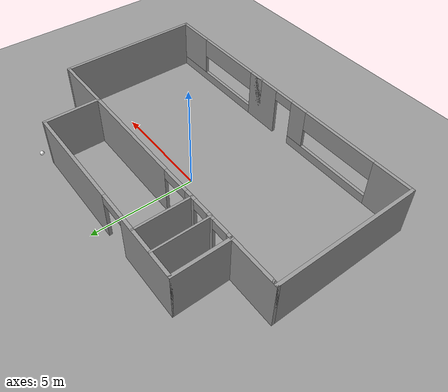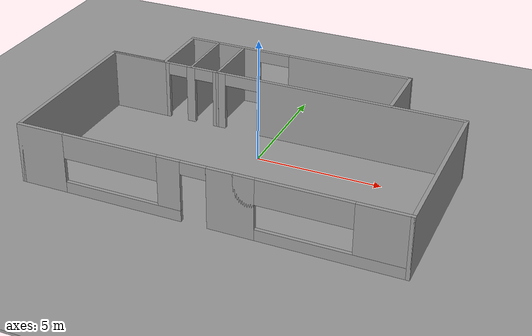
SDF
<sdf version="1.6">
 <world name="default">
  <light name="sun" type="directional">
   <pose>0 0 10 0 -0 0</pose>
   <diffuse>0.8 0.8 0.8 1</diffuse>
   <specular>0.2 0.2 0.2 1</specular>
   <attenuation>
    <range>1000</range>
    <constant>0.9</constant>
    <linear>0.01</linear>
    <quadratic>0.001</quadratic>
   </attenuation>
   <direction>-0.5 0.1 -0.9</direction>
  </light>
  <model name="ground_plane">
   <static>1</static>
   <link name="link">
    <collision name="collision">
     <geometry><plane><normal>0 0 1</normal><size>100 100</size></plane></geometry>
     <surface><friction><ode><mu>100</mu><mu2>50</mu2></ode></friction></surface>
    </collision>
    <visual name="visual">
     <cast_shadows>0</cast_shadows>
     <geometry><plane><normal>0 0 1</normal><size>100 100</size></plane></geometry>
     <material>
      <script><uri>file://media/materials/scripts/gazebo.material</uri><name>Gazebo/Grey</name></script>
     </material>
    </visual>
   </link>
  </model>
  <gravity>0 0 -9.8</gravity>
  <magnetic_field>6e-06 2.3e-05 -4.2e-05</magnetic_field>
  <atmosphere type="adiabatic"/>
  <physics name="default_physics" default="0" type="ode">
   <max_step_size>0.001</max_step_size>
   <real_time_factor>1</real_time_factor>
   <real_time_update_rate>1000</real_time_update_rate>
  </physics>
  <scene><ambient>0.4 0.4 0.4 1</ambient><background>0.7 0.7 0.7 1</background><shadows>1</shadows></scene>
  <spherical_coordinates>
   <surface_model>EARTH_WGS84</surface_model>
   <latitude_deg>0</latitude_deg>
   <longitude_deg>0</longitude_deg>
   <elevation>0</elevation>
   <heading_deg>0</heading_deg>
  </spherical_coordinates>
  <model name="project_udacity">
   <pose>0.14014 -0.40217 0 0 -0 0</pose>
   <link name="Wall_0">
    <collision name="Wall_0_Collision">
     <geometry><box><size>2.75 0.15 2.5</size></box></geometry>
     <pose>0 0 1.25 0 -0 0</pose>
    </collision>
    <visual name="Wall_0_Visual">
     <pose>0 0 1.25 0 -0 0</pose>
     <geometry><box><size>2.75 0.15 2.5</size></box></geometry>
     <material>
      <script><uri>file://media/materials/scripts/gazebo.material</uri><name>Gazebo/Grey</name></script>
      <ambient>1 1 1 1</ambient>
     </material>
     <meta><layer>0</layer></meta>
    </visual>
    <pose>4.525 3.425 0 0 -0 1.5708</pose>
   </link>
   <link name="Wall_1">
    <pose>-0.275 4.725 0 0 -0 3.14159</pose>
    <visual name="Wall_1_Visual_0">
     <pose>-2.26119 0 1.25 0 -0 0</pose>
     <geometry><box><size>5.22763 0.15 2.5</size></box></geometry>
     <material>
      <script><uri>file://media/materials/scripts/gazebo.material</uri><name>Gazebo/Grey</name></script>
      <ambient>1 1 1 1</ambient>
     </material>
     <meta><layer>0</layer></meta>
    </visual>
    <collision name="Wall_1_Collision_0">
     <geometry><box><size>5.22763 0.15 2.5</size></box></geometry>
     <pose>-2.26119 0 1.25 0 -0 0</pose>
    </collision>
    <visual name="Wall_1_Visual_1">
     <pose>3.26381 0 1.25 0 -0 0</pose>
     <geometry><box><size>3.22237 0.15 2.5</size></box></geometry>
     <material>
      <script><uri>file://media/materials/scripts/gazebo.material</uri><name>Gazebo/Grey</name></script>
      <ambient>1 1 1 1</ambient>
     </material>
     <meta><layer>0</layer></meta>
    </visual>
    <collision name="Wall_1_Collision_1">
     <geometry><box><size>3.22237 0.15 2.5</size></box></geometry>
     <pose>3.26381 0 1.25 0 -0 0</pose>
    </collision>
    <visual name="Wall_1_Visual_2">
     <pose>1.00263 0 2.25 0 -0 0</pose>
     <geometry><box><size>1.3 0.15 0.5</size></box></geometry>
     <material>
      <script><uri>file://media/materials/scripts/gazebo.material</uri><name>Gazebo/Grey</name></script>
      <ambient>1 1 1 1</ambient>
     </material>
     <meta><layer>0</layer></meta>
    </visual>
    <collision name="Wall_1_Collision_2">
     <geometry><box><size>1.3 0.15 0.5</size></box></geometry>
     <pose>1.00263 0 2.25 0 -0 0</pose>
    </collision>
   </link>
   <link name="Wall_12">
    <collision name="Wall_12_Collision">
     <geometry><box><size>2.6995 0.1 2.5</size></box></geometry>
     <pose>0 0 1.25 0 -0 0</pose>
    </collision>
    <visual name="Wall_12_Visual">
     <pose>0 0 1.25 0 -0 0</pose>
     <geometry><box><size>2.6995 0.1 2.5</size></box></geometry>
     <material>
      <script><uri>file://media/materials/scripts/gazebo.material</uri><name>Gazebo/Grey</name></script>
      <ambient>1 1 1 1</ambient>
     </material>
     <meta><layer>0</layer></meta>
    </visual>
    <pose>-2.68314 3.39817 0 0 0 -1.5708</pose>
   </link>
   <link name="Wall_14">
    <collision name="Wall_14_Collision">
     <geometry><box><size>2.68952 0.09 2.5</size></box></geometry>
     <pose>0 0 1.25 0 -0 0</pose>
    </collision>
    <visual name="Wall_14_Visual">
     <pose>0 0 1.25 0 -0 0</pose>
     <geometry><box><size>2.68952 0.09 2.5</size></box></geometry>
     <material>
      <script><uri>file://media/materials/scripts/gazebo.material</uri><name>Gazebo/Grey</name></script>
      <ambient>1 1 1 1</ambient>
     </material>
     <meta><layer>0</layer></meta>
    </visual>
    <pose>-3.86014 3.43317 0 0 0 -1.5708</pose>
   </link>
   <link name="Wall_2">
    <collision name="Wall_2_Collision">
     <geometry><box><size>2.75 0.15 2.5</size></box></geometry>
     <pose>0 0 1.25 0 -0 0</pose>
    </collision>
    <visual name="Wall_2_Visual">
     <pose>0 0 1.25 0 -0 0</pose>
     <geometry><box><size>2.75 0.15 2.5</size></box></geometry>
     <material>
      <script><uri>file://media/materials/scripts/gazebo.material</uri><name>Gazebo/Grey</name></script>
      <ambient>1 1 1 1</ambient>
     </material>
     <meta><layer>0</layer></meta>
    </visual>
    <pose>-5.075 3.425 0 0 0 -1.5708</pose>
   </link>
   <link name="Wall_3">
    <collision name="Wall_3_Collision">
     <geometry><box><size>2.5 0.15 2.5</size></box></geometry>
     <pose>0 0 1.25 0 -0 0</pose>
    </collision>
    <visual name="Wall_3_Visual">
     <pose>0 0 1.25 0 -0 0</pose>
     <geometry><box><size>2.5 0.15 2.5</size></box></geometry>
     <material>
      <script><uri>file://media/materials/scripts/gazebo.material</uri><name>Gazebo/Grey</name></script>
      <ambient>1 1 1 1</ambient>
     </material>
     <meta><layer>0</layer></meta>
    </visual>
    <pose>-6.25 2.125 0 0 -0 3.14159</pose>
   </link>
   <link name="Wall_4">
    <collision name="Wall_4_Collision">
     <geometry><box><size>7 0.15 2.5</size></box></geometry>
     <pose>0 0 1.25 0 -0 0</pose>
    </collision>
    <visual name="Wall_4_Visual">
     <pose>0 0 1.25 0 -0 0</pose>
     <geometry><box><size>7 0.15 2.5</size></box></geometry>
     <material>
      <script><uri>file://media/materials/scripts/gazebo.material</uri><name>Gazebo/Grey</name></script>
      <ambient>1 1 1 1</ambient>
     </material>
     <meta><layer>0</layer></meta>
    </visual>
    <pose>-7.425 -1.3 0 0 0 -1.5708</pose>
   </link>
   <link name="Wall_5">
    <pose>0 -4.725 0 0 -0 0</pose>
    <visual name="Wall_5_Visual_0">
     <pose>-6.52757 0 1.25 0 -0 0</pose>
     <geometry><box><size>1.94487 0.15 2.5</size></box></geometry>
     <material>
      <script><uri>file://media/materials/scripts/gazebo.material</uri><name>Gazebo/Grey</name></script>
      <ambient>1 1 1 1</ambient>
     </material>
     <meta><layer>0</layer></meta>
    </visual>
    <collision name="Wall_5_Collision_0">
     <geometry><box><size>1.94487 0.15 2.5</size></box></geometry>
     <pose>-6.52757 0 1.25 0 -0 0</pose>
    </collision>
    <visual name="Wall_5_Visual_1">
     <pose>1.06756 0 1.25 0 -0 0</pose>
     <geometry><box><size>1.79998 0.15 2.5</size></box></geometry>
     <material>
      <script><uri>file://media/materials/scripts/gazebo.material</uri><name>Gazebo/Grey</name></script>
      <ambient>1 1 1 1</ambient>
     </material>
     <meta><layer>0</layer></meta>
    </visual>
    <collision name="Wall_5_Collision_1">
     <geometry><box><size>1.79998 0.15 2.5</size></box></geometry>
     <pose>1.06756 0 1.25 0 -0 0</pose>
    </collision>
    <visual name="Wall_5_Visual_2">
     <pose>1.56331 0 1.25 0 -0 0</pose>
     <geometry><box><size>0.80847 0.15 2.5</size></box></geometry>
     <material>
      <script><uri>file://media/materials/scripts/gazebo.material</uri><name>Gazebo/Grey</name></script>
      <ambient>1 1 1 1</ambient>
     </material>
     <meta><layer>0</layer></meta>
    </visual>
    <collision name="Wall_5_Collision_2">
     <geometry><box><size>0.80847 0.15 2.5</size></box></geometry>
     <pose>1.56331 0 1.25 0 -0 0</pose>
    </collision>
    <visual name="Wall_5_Visual_3">
     <pose>-3.19378 0 0.25 0 -0 0</pose>
     <geometry><box><size>4.7227 0.15 0.5</size></box></geometry>
     <material>
      <script><uri>file://media/materials/scripts/gazebo.material</uri><name>Gazebo/Grey</name></script>
      <ambient>1 1 1 1</ambient>
     </material>
     <meta><layer>0</layer></meta>
    </visual>
    <collision name="Wall_5_Collision_3">
     <geometry><box><size>4.7227 0.15 0.5</size></box></geometry>
     <pose>-3.19378 0 0.25 0 -0 0</pose>
    </collision>
    <visual name="Wall_5_Visual_4">
     <pose>4.73377 0 0.25 0 -0 0</pose>
     <geometry><box><size>5.53245 0.15 0.5</size></box></geometry>
     <material>
      <script><uri>file://media/materials/scripts/gazebo.material</uri><name>Gazebo/Grey</name></script>
      <ambient>1 1 1 1</ambient>
     </material>
     <meta><layer>0</layer></meta>
    </visual>
    <collision name="Wall_5_Collision_4">
     <geometry><box><size>5.53245 0.15 0.5</size></box></geometry>
     <pose>4.73377 0 0.25 0 -0 0</pose>
    </collision>
    <visual name="Wall_5_Visual_5">
     <pose>4.73377 0 0.25 0 -0 0</pose>
     <geometry><box><size>5.53245 0.15 0.5</size></box></geometry>
     <material>
      <script><uri>file://media/materials/scripts/gazebo.material</uri><name>Gazebo/Grey</name></script>
      <ambient>1 1 1 1</ambient>
     </material>
     <meta><layer>0</layer></meta>
    </visual>
    <collision name="Wall_5_Collision_5">
     <geometry><box><size>5.53245 0.15 0.5</size></box></geometry>
     <pose>4.73377 0 0.25 0 -0 0</pose>
    </collision>
    <visual name="Wall_5_Visual_6">
     <pose>-1.28528 0 1.5 0 -0 0</pose>
     <geometry><box><size>0.905699 0.15 2</size></box></geometry>
     <material>
      <script><uri>file://media/materials/scripts/gazebo.material</uri><name>Gazebo/Grey</name></script>
      <ambient>1 1 1 1</ambient>
     </material>
     <meta><layer>0</layer></meta>
    </visual>
    <collision name="Wall_5_Collision_6">
     <geometry><box><size>0.905699 0.15 2</size></box></geometry>
     <pose>-1.28528 0 1.5 0 -0 0</pose>
    </collision>
    <visual name="Wall_5_Visual_7">
     <pose>-1.28528 0 1.5 0 -0 0</pose>
     <geometry><box><size>0.905699 0.15 2</size></box></geometry>
     <material>
      <script><uri>file://media/materials/scripts/gazebo.material</uri><name>Gazebo/Grey</name></script>
      <ambient>1 1 1 1</ambient>
     </material>
     <meta><layer>0</layer></meta>
    </visual>
    <collision name="Wall_5_Collision_7">
     <geometry><box><size>0.905699 0.15 2</size></box></geometry>
     <pose>-1.28528 0 1.5 0 -0 0</pose>
    </collision>
    <visual name="Wall_5_Visual_8">
     <pose>6.50127 0 1.5 0 -0 0</pose>
     <geometry><box><size>1.99745 0.15 2</size></box></geometry>
     <material>
      <script><uri>file://media/materials/scripts/gazebo.material</uri><name>Gazebo/Grey</name></script>
      <ambient>1 1 1 1</ambient>
     </material>
     <meta><layer>0</layer></meta>
    </visual>
    <collision name="Wall_5_Collision_8">
     <geometry><box><size>1.99745 0.15 2</size></box></geometry>
     <pose>6.50127 0 1.5 0 -0 0</pose>
    </collision>
    <visual name="Wall_5_Visual_9">
     <pose>6.50127 0 1.5 0 -0 0</pose>
     <geometry><box><size>1.99745 0.15 2</size></box></geometry>
     <material>
      <script><uri>file://media/materials/scripts/gazebo.material</uri><name>Gazebo/Grey</name></script>
      <ambient>1 1 1 1</ambient>
     </material>
     <meta><layer>0</layer></meta>
    </visual>
    <collision name="Wall_5_Collision_9">
     <geometry><box><size>1.99745 0.15 2</size></box></geometry>
     <pose>6.50127 0 1.5 0 -0 0</pose>
    </collision>
    <visual name="Wall_5_Visual_10">
     <pose>-3.64663 0 2 0 -0 0</pose>
     <geometry><box><size>3.817 0.15 1</size></box></geometry>
     <material>
      <script><uri>file://media/materials/scripts/gazebo.material</uri><name>Gazebo/Grey</name></script>
      <ambient>1 1 1 1</ambient>
     </material>
     <meta><layer>0</layer></meta>
    </visual>
    <collision name="Wall_5_Collision_10">
     <geometry><box><size>3.817 0.15 1</size></box></geometry>
     <pose>-3.64663 0 2 0 -0 0</pose>
    </collision>
    <visual name="Wall_5_Visual_11">
     <pose>3.73505 0 2 0 -0 0</pose>
     <geometry><box><size>3.535 0.15 1</size></box></geometry>
     <material>
      <script><uri>file://media/materials/scripts/gazebo.material</uri><name>Gazebo/Grey</name></script>
      <ambient>1 1 1 1</ambient>
     </material>
     <meta><layer>0</layer></meta>
    </visual>
    <collision name="Wall_5_Collision_11">
     <geometry><box><size>3.535 0.15 1</size></box></geometry>
     <pose>3.73505 0 2 0 -0 0</pose>
    </collision>
    <visual name="Wall_5_Visual_12">
     <pose>3.73505 0 2 0 -0 0</pose>
     <geometry><box><size>3.535 0.15 1</size></box></geometry>
     <material>
      <script><uri>file://media/materials/scripts/gazebo.material</uri><name>Gazebo/Grey</name></script>
      <ambient>1 1 1 1</ambient>
     </material>
     <meta><layer>0</layer></meta>
    </visual>
    <collision name="Wall_5_Collision_12">
     <geometry><box><size>3.535 0.15 1</size></box></geometry>
     <pose>3.73505 0 2 0 -0 0</pose>
    </collision>
    <visual name="Wall_5_Visual_13">
     <pose>-0.332899 0 2.25 0 -0 0</pose>
     <geometry><box><size>0.999073 0.15 0.5</size></box></geometry>
     <material>
      <script><uri>file://media/materials/scripts/gazebo.material</uri><name>Gazebo/Grey</name></script>
      <ambient>1 1 1 1</ambient>
     </material>
     <meta><layer>0</layer></meta>
    </visual>
    <collision name="Wall_5_Collision_13">
     <geometry><box><size>0.999073 0.15 0.5</size></box></geometry>
     <pose>-0.332899 0 2.25 0 -0 0</pose>
    </collision>
    <visual name="Wall_5_Visual_14">
     <pose>-0.332899 0 2.25 0 -0 0</pose>
     <geometry><box><size>0.999073 0.15 0.5</size></box></geometry>
     <material>
      <script><uri>file://media/materials/scripts/gazebo.material</uri><name>Gazebo/Grey</name></script>
      <ambient>1 1 1 1</ambient>
     </material>
     <meta><layer>0</layer></meta>
    </visual>
    <collision name="Wall_5_Collision_14">
     <geometry><box><size>0.999073 0.15 0.5</size></box></geometry>
     <pose>-0.332899 0 2.25 0 -0 0</pose>
    </collision>
   </link>
   <link name="Wall_6">
    <collision name="Wall_6_Collision">
     <geometry><box><size>7 0.15 2.5</size></box></geometry>
     <pose>0 0 1.25 0 -0 0</pose>
    </collision>
    <visual name="Wall_6_Visual">
     <pose>0 0 1.25 0 -0 0</pose>
     <geometry><box><size>7 0.15 2.5</size></box></geometry>
     <material>
      <script><uri>file://media/materials/scripts/gazebo.material</uri><name>Gazebo/Grey</name></script>
      <ambient>1 1 1 1</ambient>
     </material>
     <meta><layer>0</layer></meta>
    </visual>
    <pose>7.425 -1.3 0 0 -0 1.5708</pose>
   </link>
   <link name="Wall_7">
    <pose>0 2.125 0 0 -0 3.14159</pose>
    <visual name="Wall_7_Visual_0">
     <pose>-3.28914 0 1.25 0 -0 0</pose>
     <geometry><box><size>8.42171 0.15 2.5</size></box></geometry>
     <material>
      <script><uri>file://media/materials/scripts/gazebo.material</uri><name>Gazebo/Grey</name></script>
      <ambient>1 1 1 1</ambient>
     </material>
     <meta><layer>0</layer></meta>
    </visual>
    <collision name="Wall_7_Collision_0">
     <geometry><box><size>8.42171 0.15 2.5</size></box></geometry>
     <pose>-3.28914 0 1.25 0 -0 0</pose>
    </collision>
    <visual name="Wall_7_Visual_1">
     <pose>2.59958 0 1.25 0 -0 0</pose>
     <geometry><box><size>0.555726 0.15 2.5</size></box></geometry>
     <material>
      <script><uri>file://media/materials/scripts/gazebo.material</uri><name>Gazebo/Grey</name></script>
      <ambient>1 1 1 1</ambient>
     </material>
     <meta><layer>0</layer></meta>
    </visual>
    <collision name="Wall_7_Collision_1">
     <geometry><box><size>0.555726 0.15 2.5</size></box></geometry>
     <pose>2.59958 0 1.25 0 -0 0</pose>
    </collision>
    <visual name="Wall_7_Visual_2">
     <pose>3.86044 0 1.25 0 -0 0</pose>
     <geometry><box><size>0.366004 0.15 2.5</size></box></geometry>
     <material>
      <script><uri>file://media/materials/scripts/gazebo.material</uri><name>Gazebo/Grey</name></script>
      <ambient>1 1 1 1</ambient>
     </material>
     <meta><layer>0</layer></meta>
    </visual>
    <collision name="Wall_7_Collision_2">
     <geometry><box><size>0.366004 0.15 2.5</size></box></geometry>
     <pose>3.86044 0 1.25 0 -0 0</pose>
    </collision>
    <visual name="Wall_7_Visual_3">
     <pose>6.17172 0 1.25 0 -0 0</pose>
     <geometry><box><size>2.65656 0.15 2.5</size></box></geometry>
     <material>
      <script><uri>file://media/materials/scripts/gazebo.material</uri><name>Gazebo/Grey</name></script>
      <ambient>1 1 1 1</ambient>
     </material>
     <meta><layer>0</layer></meta>
    </visual>
    <collision name="Wall_7_Collision_3">
     <geometry><box><size>2.65656 0.15 2.5</size></box></geometry>
     <pose>6.17172 0 1.25 0 -0 0</pose>
    </collision>
    <visual name="Wall_7_Visual_4">
     <pose>1.62171 0 2.25 0 -0 0</pose>
     <geometry><box><size>1.4 0.15 0.5</size></box></geometry>
     <material>
      <script><uri>file://media/materials/scripts/gazebo.material</uri><name>Gazebo/Grey</name></script>
      <ambient>1 1 1 1</ambient>
     </material>
     <meta><layer>0</layer></meta>
    </visual>
    <collision name="Wall_7_Collision_4">
     <geometry><box><size>1.4 0.15 0.5</size></box></geometry>
     <pose>1.62171 0 2.25 0 -0 0</pose>
    </collision>
    <visual name="Wall_7_Visual_5">
     <pose>3.27744 0 2.25 0 -0 0</pose>
     <geometry><box><size>0.8 0.15 0.5</size></box></geometry>
     <material>
      <script><uri>file://media/materials/scripts/gazebo.material</uri><name>Gazebo/Grey</name></script>
      <ambient>1 1 1 1</ambient>
     </material>
     <meta><layer>0</layer></meta>
    </visual>
    <collision name="Wall_7_Collision_5">
     <geometry><box><size>0.8 0.15 0.5</size></box></geometry>
     <pose>3.27744 0 2.25 0 -0 0</pose>
    </collision>
    <visual name="Wall_7_Visual_6">
     <pose>4.44344 0 2.25 0 -0 0</pose>
     <geometry><box><size>0.8 0.15 0.5</size></box></geometry>
     <material>
      <script><uri>file://media/materials/scripts/gazebo.material</uri><name>Gazebo/Grey</name></script>
      <ambient>1 1 1 1</ambient>
     </material>
     <meta><layer>0</layer></meta>
    </visual>
    <collision name="Wall_7_Collision_6">
     <geometry><box><size>0.8 0.15 0.5</size></box></geometry>
     <pose>4.44344 0 2.25 0 -0 0</pose>
    </collision>
   </link>
   <static>1</static>
  </model>
  <model name="ground_plane_0">
   <static>1</static>
   <link name="link">
    <collision name="collision">
     <geometry><plane><normal>0 0 1</normal><size>100 100</size></plane></geometry>
     <surface>
      <contact><collide_bitmask>65535</collide_bitmask></contact>
      <friction><ode><mu>100</mu><mu2>50</mu2></ode></friction>
     </surface>
    </collision>
    <visual name="visual">
     <cast_shadows>0</cast_shadows>
     <geometry><plane><normal>0 0 1</normal><size>100 100</size></plane></geometry>
     <material>
      <script><uri>file://media/materials/scripts/gazebo.material</uri><name>Gazebo/Grey</name></script>
     </material>
    </visual>
   </link>
   <pose>3.35384 -1.59045 0 0 -0 0</pose>
  </model>
  <model name="my_ball">
   <link name="link_0">
    <inertial>
     <mass>1</mass>
     <inertia><ixx>0.1</ixx><ixy>0</ixy><ixz>0</ixz><iyy>0.1</iyy><iyz>0</iyz><izz>0.1</izz></inertia>
    </inertial>
    <visual name="visual">
     <geometry><sphere><radius>0.1</radius></sphere></geometry>
     <material>
      <lighting>1</lighting>
      <script><uri>file://media/materials/scripts/gazebo.material</uri><name>Gazebo/White</name></script>
      <shader type="pixel"><normal_map>__default__</normal_map></shader>
      <ambient>1 1 1 1</ambient>
      <diffuse>1 1 1 1</diffuse>
      <specular>1 1 1 1</specular>
      <emissive>1 1 1 1</emissive>
     </material>
    </visual>
    <collision name="collision">
     <geometry><sphere><radius>0.1</radius></sphere></geometry>
     <surface>
      <friction>
       <ode><mu>1</mu><mu2>1</mu2><fdir1>0 0 0</fdir1><slip1>0</slip1><slip2>0</slip2></ode>
       <torsional>
        <coefficient>1</coefficient>
        <patch_radius>0</patch_radius>
        <surface_radius>0</surface_radius>
        <use_patch_radius>1</use_patch_radius>
        <ode><slip>0</slip></ode>
       </torsional>
      </friction>
      <bounce><restitution_coefficient>0</restitution_coefficient><threshold>1e+06</threshold></bounce>
      <contact>
       <collide_without_contact>0</collide_without_contact>
       <collide_without_contact_bitmask>1</collide_without_contact_bitmask>
       <collide_bitmask>1</collide_bitmask>
       <ode>
        <soft_cfm>0</soft_cfm>
        <soft_erp>0.2</soft_erp>
        <kp>1e+13</kp>
        <kd>1</kd>
        <max_vel>0.01</max_vel>
        <min_depth>0</min_depth>
       </ode>
       <bullet>
        <split_impulse>1</split_impulse>
        <split_impulse_penetration_threshold>-0.01</split_impulse_penetration_threshold>
        <soft_cfm>0</soft_cfm>
        <soft_erp>0.2</soft_erp>
        <kp>1e+13</kp>
        <kd>1</kd>
       </bullet>
      </contact>
     </surface>
    </collision>
   </link>
   <static>0</static>
   <pose>5.54288 4.55471 0.099991 0 -0 0</pose>
  </model>
 </world>
</sdf>
